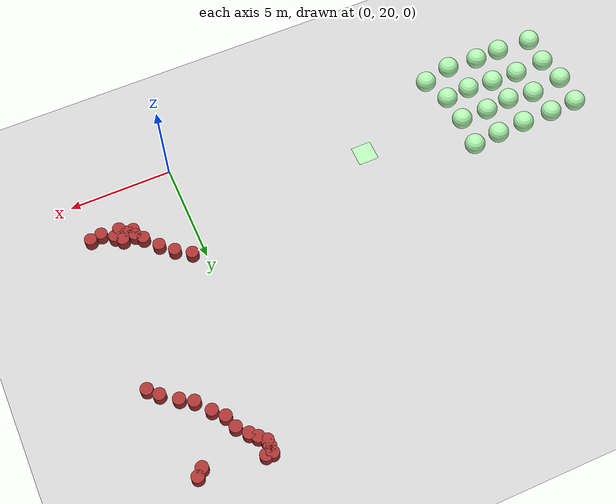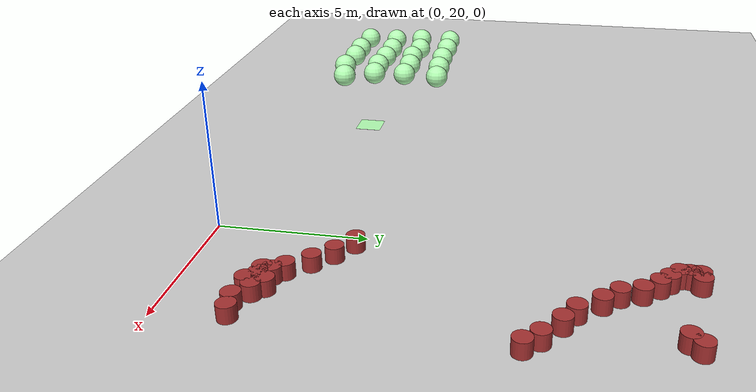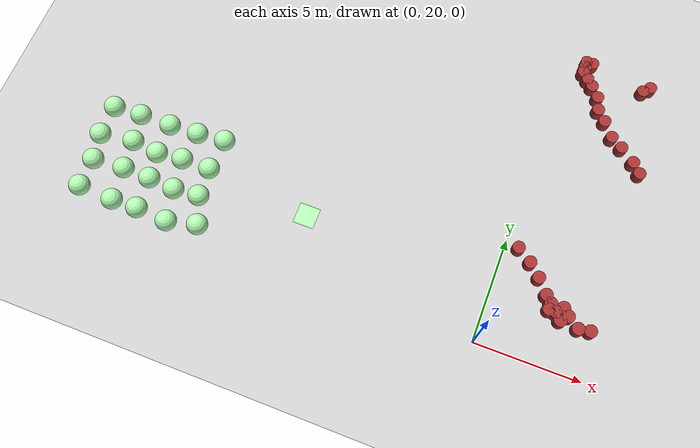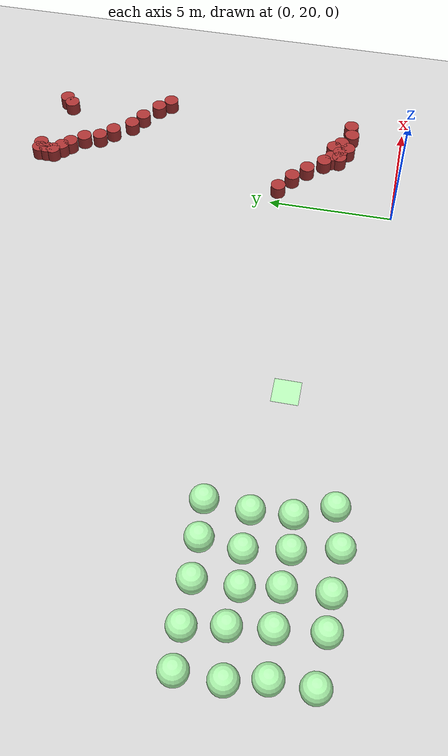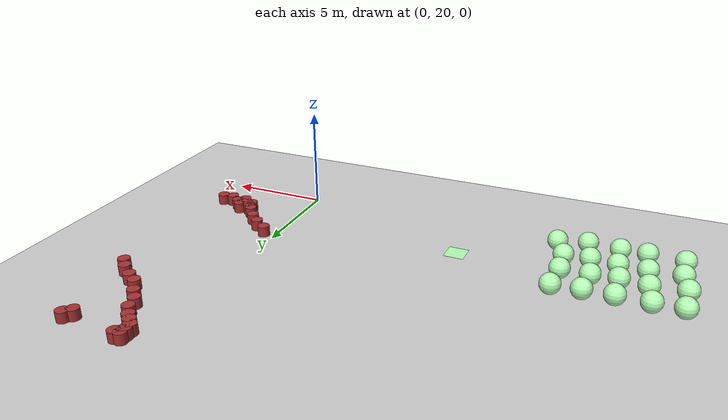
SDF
<sdf version="1.6">
 <world name="default">
  <model name="bouncy_ball">
   <link name="link_0">
    <inertial>
     <mass>0.1</mass>
     <inertia><ixx>1</ixx><ixy>0</ixy><ixz>0</ixz><iyy>1</iyy><iyz>0</iyz><izz>1</izz></inertia>
    </inertial>
    <visual name="visual">
     <geometry><sphere><radius>0.5</radius></sphere></geometry>
     <material>
      <lighting>1</lighting>
      <script><uri>file://media/materials/scripts/gazebo.material</uri><name>Gazebo/Grey</name></script>
      <shader type="pixel"><normal_map>__default__</normal_map></shader>
      <ambient>0 1 0 0</ambient>
      <diffuse>0.7 1 0.7 1</diffuse>
      <specular>0.01 0.01 0.01 1</specular>
      <emissive>0 0 0 1</emissive>
     </material>
    </visual>
    <collision name="collision">
     <geometry><sphere><radius>0.5</radius></sphere></geometry>
     <surface>
      <friction><ode><mu>0</mu><mu2>0</mu2></ode></friction>
      <contact>
       <ode><kp>500000</kp><kd>0</kd><max_vel>1e+26</max_vel><min_depth>0</min_depth></ode>
       <bullet>
        <kp>500000</kp>
        <kd>0</kd>
        <split_impulse>1</split_impulse>
        <split_impulse_penetration_threshold>-0.01</split_impulse_penetration_threshold>
       </bullet>
      </contact>
     </surface>
    </collision>
   </link>
   <static>0</static>
   <pose>-19.8053 24.5819 0.499998 0 -0 0</pose>
  </model>
  <model name="bouncy_ball_clone">
   <link name="link_0">
    <inertial>
     <mass>0.1</mass>
     <inertia><ixx>1</ixx><ixy>0</ixy><ixz>0</ixz><iyy>1</iyy><iyz>0</iyz><izz>1</izz></inertia>
    </inertial>
    <visual name="visual">
     <geometry><sphere><radius>0.5</radius></sphere></geometry>
     <material>
      <lighting>1</lighting>
      <script><uri>file://media/materials/scripts/gazebo.material</uri><name>Gazebo/Grey</name></script>
      <shader type="pixel"><normal_map>__default__</normal_map></shader>
      <ambient>0 1 0 0</ambient>
      <diffuse>0.7 1 0.7 1</diffuse>
      <specular>0.01 0.01 0.01 1</specular>
      <emissive>0 0 0 1</emissive>
     </material>
    </visual>
    <collision name="collision">
     <geometry><sphere><radius>0.5</radius></sphere></geometry>
     <surface>
      <friction><ode><mu>0</mu><mu2>0</mu2></ode></friction>
      <contact>
       <ode><kp>500000</kp><kd>0</kd><max_vel>1e+26</max_vel><min_depth>0</min_depth></ode>
       <bullet>
        <kp>500000</kp>
        <kd>0</kd>
        <split_impulse>1</split_impulse>
        <split_impulse_penetration_threshold>-0.01</split_impulse_penetration_threshold>
       </bullet>
      </contact>
     </surface>
    </collision>
   </link>
   <static>0</static>
   <pose>-18.4197 24.647 0.499998 0 -0 0</pose>
  </model>
  <model name="bouncy_ball_clone_0">
   <link name="link_0">
    <inertial>
     <mass>0.1</mass>
     <inertia><ixx>1</ixx><ixy>0</ixy><ixz>0</ixz><iyy>1</iyy><iyz>0</iyz><izz>1</izz></inertia>
    </inertial>
    <visual name="visual">
     <geometry><sphere><radius>0.5</radius></sphere></geometry>
     <material>
      <lighting>1</lighting>
      <script><uri>file://media/materials/scripts/gazebo.material</uri><name>Gazebo/Grey</name></script>
      <shader type="pixel"><normal_map>__default__</normal_map></shader>
      <ambient>0 1 0 0</ambient>
      <diffuse>0.7 1 0.7 1</diffuse>
      <specular>0.01 0.01 0.01 1</specular>
      <emissive>0 0 0 1</emissive>
     </material>
    </visual>
    <collision name="collision">
     <geometry><sphere><radius>0.5</radius></sphere></geometry>
     <surface>
      <friction><ode><mu>0</mu><mu2>0</mu2></ode></friction>
      <contact>
       <ode><kp>500000</kp><kd>0</kd><max_vel>1e+26</max_vel><min_depth>0</min_depth></ode>
       <bullet>
        <kp>500000</kp>
        <kd>0</kd>
        <split_impulse>1</split_impulse>
        <split_impulse_penetration_threshold>-0.01</split_impulse_penetration_threshold>
       </bullet>
      </contact>
     </surface>
    </collision>
   </link>
   <static>0</static>
   <pose>-16.8768 24.6481 0.499998 0 -0 0</pose>
  </model>
  <model name="bouncy_ball_clone_1">
   <link name="link_0">
    <inertial>
     <mass>0.1</mass>
     <inertia><ixx>1</ixx><ixy>0</ixy><ixz>0</ixz><iyy>1</iyy><iyz>0</iyz><izz>1</izz></inertia>
    </inertial>
    <visual name="visual">
     <geometry><sphere><radius>0.5</radius></sphere></geometry>
     <material>
      <lighting>1</lighting>
      <script><uri>file://media/materials/scripts/gazebo.material</uri><name>Gazebo/Grey</name></script>
      <shader type="pixel"><normal_map>__default__</normal_map></shader>
      <ambient>0 1 0 0</ambient>
      <diffuse>0.7 1 0.7 1</diffuse>
      <specular>0.01 0.01 0.01 1</specular>
      <emissive>0 0 0 1</emissive>
     </material>
    </visual>
    <collision name="collision">
     <geometry><sphere><radius>0.5</radius></sphere></geometry>
     <surface>
      <friction><ode><mu>0</mu><mu2>0</mu2></ode></friction>
      <contact>
       <ode><kp>500000</kp><kd>0</kd><max_vel>1e+26</max_vel><min_depth>0</min_depth></ode>
       <bullet>
        <kp>500000</kp>
        <kd>0</kd>
        <split_impulse>1</split_impulse>
        <split_impulse_penetration_threshold>-0.01</split_impulse_penetration_threshold>
       </bullet>
      </contact>
     </surface>
    </collision>
   </link>
   <static>0</static>
   <pose>-15.4597 24.7144 0.499998 0 -0 0</pose>
  </model>
  <model name="bouncy_ball_clone_2">
   <link name="link_0">
    <inertial>
     <mass>0.1</mass>
     <inertia><ixx>1</ixx><ixy>0</ixy><ixz>0</ixz><iyy>1</iyy><iyz>0</iyz><izz>1</izz></inertia>
    </inertial>
    <visual name="visual">
     <geometry><sphere><radius>0.5</radius></sphere></geometry>
     <material>
      <lighting>1</lighting>
      <script><uri>file://media/materials/scripts/gazebo.material</uri><name>Gazebo/Grey</name></script>
      <shader type="pixel"><normal_map>__default__</normal_map></shader>
      <ambient>0 1 0 0</ambient>
      <diffuse>0.7 1 0.7 1</diffuse>
      <specular>0.01 0.01 0.01 1</specular>
      <emissive>0 0 0 1</emissive>
     </material>
    </visual>
    <collision name="collision">
     <geometry><sphere><radius>0.5</radius></sphere></geometry>
     <surface>
      <friction><ode><mu>0</mu><mu2>0</mu2></ode></friction>
      <contact>
       <ode><kp>500000</kp><kd>0</kd><max_vel>1e+26</max_vel><min_depth>0</min_depth></ode>
       <bullet>
        <kp>500000</kp>
        <kd>0</kd>
        <split_impulse>1</split_impulse>
        <split_impulse_penetration_threshold>-0.01</split_impulse_penetration_threshold>
       </bullet>
      </contact>
     </surface>
    </collision>
   </link>
   <static>0</static>
   <pose>-14.0987 24.8301 0.499998 0 -0 0</pose>
  </model>
  <model name="bouncy_ball_clone_3">
   <link name="link_0">
    <inertial>
     <mass>0.1</mass>
     <inertia><ixx>1</ixx><ixy>0</ixy><ixz>0</ixz><iyy>1</iyy><iyz>0</iyz><izz>1</izz></inertia>
    </inertial>
    <visual name="visual">
     <geometry><sphere><radius>0.5</radius></sphere></geometry>
     <material>
      <lighting>1</lighting>
      <script><uri>file://media/materials/scripts/gazebo.material</uri><name>Gazebo/Grey</name></script>
      <shader type="pixel"><normal_map>__default__</normal_map></shader>
      <ambient>0 1 0 0</ambient>
      <diffuse>0.7 1 0.7 1</diffuse>
      <specular>0.01 0.01 0.01 1</specular>
      <emissive>0 0 0 1</emissive>
     </material>
    </visual>
    <collision name="collision">
     <geometry><sphere><radius>0.5</radius></sphere></geometry>
     <surface>
      <friction><ode><mu>0</mu><mu2>0</mu2></ode></friction>
      <contact>
       <ode><kp>500000</kp><kd>0</kd><max_vel>1e+26</max_vel><min_depth>0</min_depth></ode>
       <bullet>
        <kp>500000</kp>
        <kd>0</kd>
        <split_impulse>1</split_impulse>
        <split_impulse_penetration_threshold>-0.01</split_impulse_penetration_threshold>
       </bullet>
      </contact>
     </surface>
    </collision>
   </link>
   <static>0</static>
   <pose>-19.8031 23.0705 0.499998 0 -0 0</pose>
  </model>
  <model name="bouncy_ball_clone_4">
   <link name="link_0">
    <inertial>
     <mass>0.1</mass>
     <inertia><ixx>1</ixx><ixy>0</ixy><ixz>0</ixz><iyy>1</iyy><iyz>0</iyz><izz>1</izz></inertia>
    </inertial>
    <visual name="visual">
     <geometry><sphere><radius>0.5</radius></sphere></geometry>
     <material>
      <lighting>1</lighting>
      <script><uri>file://media/materials/scripts/gazebo.material</uri><name>Gazebo/Grey</name></script>
      <shader type="pixel"><normal_map>__default__</normal_map></shader>
      <ambient>0 1 0 0</ambient>
      <diffuse>0.7 1 0.7 1</diffuse>
      <specular>0.01 0.01 0.01 1</specular>
      <emissive>0 0 0 1</emissive>
     </material>
    </visual>
    <collision name="collision">
     <geometry><sphere><radius>0.5</radius></sphere></geometry>
     <surface>
      <friction><ode><mu>0</mu><mu2>0</mu2></ode></friction>
      <contact>
       <ode><kp>500000</kp><kd>0</kd><max_vel>1e+26</max_vel><min_depth>0</min_depth></ode>
       <bullet>
        <kp>500000</kp>
        <kd>0</kd>
        <split_impulse>1</split_impulse>
        <split_impulse_penetration_threshold>-0.01</split_impulse_penetration_threshold>
       </bullet>
      </contact>
     </surface>
    </collision>
   </link>
   <static>0</static>
   <pose>-18.1657 23.2921 0.499998 0 -0 0</pose>
  </model>
  <model name="bouncy_ball_clone_5">
   <link name="link_0">
    <inertial>
     <mass>0.1</mass>
     <inertia><ixx>1</ixx><ixy>0</ixy><ixz>0</ixz><iyy>1</iyy><iyz>0</iyz><izz>1</izz></inertia>
    </inertial>
    <visual name="visual">
     <geometry><sphere><radius>0.5</radius></sphere></geometry>
     <material>
      <lighting>1</lighting>
      <script><uri>file://media/materials/scripts/gazebo.material</uri><name>Gazebo/Grey</name></script>
      <shader type="pixel"><normal_map>__default__</normal_map></shader>
      <ambient>0 1 0 0</ambient>
      <diffuse>0.7 1 0.7 1</diffuse>
      <specular>0.01 0.01 0.01 1</specular>
      <emissive>0 0 0 1</emissive>
     </material>
    </visual>
    <collision name="collision">
     <geometry><sphere><radius>0.5</radius></sphere></geometry>
     <surface>
      <friction><ode><mu>0</mu><mu2>0</mu2></ode></friction>
      <contact>
       <ode><kp>500000</kp><kd>0</kd><max_vel>1e+26</max_vel><min_depth>0</min_depth></ode>
       <bullet>
        <kp>500000</kp>
        <kd>0</kd>
        <split_impulse>1</split_impulse>
        <split_impulse_penetration_threshold>-0.01</split_impulse_penetration_threshold>
       </bullet>
      </contact>
     </surface>
    </collision>
   </link>
   <static>0</static>
   <pose>-16.8429 23.1367 0.499998 0 -0 0</pose>
  </model>
  <model name="bouncy_ball_clone_6">
   <link name="link_0">
    <inertial>
     <mass>0.1</mass>
     <inertia><ixx>1</ixx><ixy>0</ixy><ixz>0</ixz><iyy>1</iyy><iyz>0</iyz><izz>1</izz></inertia>
    </inertial>
    <visual name="visual">
     <geometry><sphere><radius>0.5</radius></sphere></geometry>
     <material>
      <lighting>1</lighting>
      <script><uri>file://media/materials/scripts/gazebo.material</uri><name>Gazebo/Grey</name></script>
      <shader type="pixel"><normal_map>__default__</normal_map></shader>
      <ambient>0 1 0 0</ambient>
      <diffuse>0.7 1 0.7 1</diffuse>
      <specular>0.01 0.01 0.01 1</specular>
      <emissive>0 0 0 1</emissive>
     </material>
    </visual>
    <collision name="collision">
     <geometry><sphere><radius>0.5</radius></sphere></geometry>
     <surface>
      <friction><ode><mu>0</mu><mu2>0</mu2></ode></friction>
      <contact>
       <ode><kp>500000</kp><kd>0</kd><max_vel>1e+26</max_vel><min_depth>0</min_depth></ode>
       <bullet>
        <kp>500000</kp>
        <kd>0</kd>
        <split_impulse>1</split_impulse>
        <split_impulse_penetration_threshold>-0.01</split_impulse_penetration_threshold>
       </bullet>
      </contact>
     </surface>
    </collision>
   </link>
   <static>0</static>
   <pose>-15.5838 23.2647 0.499998 0 -0 0</pose>
  </model>
  <model name="bouncy_ball_clone_7">
   <link name="link_0">
    <inertial>
     <mass>0.1</mass>
     <inertia><ixx>1</ixx><ixy>0</ixy><ixz>0</ixz><iyy>1</iyy><iyz>0</iyz><izz>1</izz></inertia>
    </inertial>
    <visual name="visual">
     <geometry><sphere><radius>0.5</radius></sphere></geometry>
     <material>
      <lighting>1</lighting>
      <script><uri>file://media/materials/scripts/gazebo.material</uri><name>Gazebo/Grey</name></script>
      <shader type="pixel"><normal_map>__default__</normal_map></shader>
      <ambient>0 1 0 0</ambient>
      <diffuse>0.7 1 0.7 1</diffuse>
      <specular>0.01 0.01 0.01 1</specular>
      <emissive>0 0 0 1</emissive>
     </material>
    </visual>
    <collision name="collision">
     <geometry><sphere><radius>0.5</radius></sphere></geometry>
     <surface>
      <friction><ode><mu>0</mu><mu2>0</mu2></ode></friction>
      <contact>
       <ode><kp>500000</kp><kd>0</kd><max_vel>1e+26</max_vel><min_depth>0</min_depth></ode>
       <bullet>
        <kp>500000</kp>
        <kd>0</kd>
        <split_impulse>1</split_impulse>
        <split_impulse_penetration_threshold>-0.01</split_impulse_penetration_threshold>
       </bullet>
      </contact>
     </surface>
    </collision>
   </link>
   <static>0</static>
   <pose>-14.1979 23.267 0.499998 0 -0 0</pose>
  </model>
  <model name="bouncy_ball_clone_8">
   <link name="link_0">
    <inertial>
     <mass>0.1</mass>
     <inertia><ixx>1</ixx><ixy>0</ixy><ixz>0</ixz><iyy>1</iyy><iyz>0</iyz><izz>1</izz></inertia>
    </inertial>
    <visual name="visual">
     <geometry><sphere><radius>0.5</radius></sphere></geometry>
     <material>
      <lighting>1</lighting>
      <script><uri>file://media/materials/scripts/gazebo.material</uri><name>Gazebo/Grey</name></script>
      <shader type="pixel"><normal_map>__default__</normal_map></shader>
      <ambient>0 1 0 0</ambient>
      <diffuse>0.7 1 0.7 1</diffuse>
      <specular>0.01 0.01 0.01 1</specular>
      <emissive>0 0 0 1</emissive>
     </material>
    </visual>
    <collision name="collision">
     <geometry><sphere><radius>0.5</radius></sphere></geometry>
     <surface>
      <friction><ode><mu>0</mu><mu2>0</mu2></ode></friction>
      <contact>
       <ode><kp>500000</kp><kd>0</kd><max_vel>1e+26</max_vel><min_depth>0</min_depth></ode>
       <bullet>
        <kp>500000</kp>
        <kd>0</kd>
        <split_impulse>1</split_impulse>
        <split_impulse_penetration_threshold>-0.01</split_impulse_penetration_threshold>
       </bullet>
      </contact>
     </surface>
    </collision>
   </link>
   <static>0</static>
   <pose>-19.5178 21.7785 0.499998 0 -0 0</pose>
  </model>
  <model name="bouncy_ball_clone_9">
   <link name="link_0">
    <inertial>
     <mass>0.1</mass>
     <inertia><ixx>1</ixx><ixy>0</ixy><ixz>0</ixz><iyy>1</iyy><iyz>0</iyz><izz>1</izz></inertia>
    </inertial>
    <visual name="visual">
     <geometry><sphere><radius>0.5</radius></sphere></geometry>
     <material>
      <lighting>1</lighting>
      <script><uri>file://media/materials/scripts/gazebo.material</uri><name>Gazebo/Grey</name></script>
      <shader type="pixel"><normal_map>__default__</normal_map></shader>
      <ambient>0 1 0 0</ambient>
      <diffuse>0.7 1 0.7 1</diffuse>
      <specular>0.01 0.01 0.01 1</specular>
      <emissive>0 0 0 1</emissive>
     </material>
    </visual>
    <collision name="collision">
     <geometry><sphere><radius>0.5</radius></sphere></geometry>
     <surface>
      <friction><ode><mu>0</mu><mu2>0</mu2></ode></friction>
      <contact>
       <ode><kp>500000</kp><kd>0</kd><max_vel>1e+26</max_vel><min_depth>0</min_depth></ode>
       <bullet>
        <kp>500000</kp>
        <kd>0</kd>
        <split_impulse>1</split_impulse>
        <split_impulse_penetration_threshold>-0.01</split_impulse_penetration_threshold>
       </bullet>
      </contact>
     </surface>
    </collision>
   </link>
   <static>0</static>
   <pose>-17.975 21.8756 0.499998 0 -0 0</pose>
  </model>
  <model name="bouncy_ball_clone_10">
   <link name="link_0">
    <inertial>
     <mass>0.1</mass>
     <inertia><ixx>1</ixx><ixy>0</ixy><ixz>0</ixz><iyy>1</iyy><iyz>0</iyz><izz>1</izz></inertia>
    </inertial>
    <visual name="visual">
     <geometry><sphere><radius>0.5</radius></sphere></geometry>
     <material>
      <lighting>1</lighting>
      <script><uri>file://media/materials/scripts/gazebo.material</uri><name>Gazebo/Grey</name></script>
      <shader type="pixel"><normal_map>__default__</normal_map></shader>
      <ambient>0 1 0 0</ambient>
      <diffuse>0.7 1 0.7 1</diffuse>
      <specular>0.01 0.01 0.01 1</specular>
      <emissive>0 0 0 1</emissive>
     </material>
    </visual>
    <collision name="collision">
     <geometry><sphere><radius>0.5</radius></sphere></geometry>
     <surface>
      <friction><ode><mu>0</mu><mu2>0</mu2></ode></friction>
      <contact>
       <ode><kp>500000</kp><kd>0</kd><max_vel>1e+26</max_vel><min_depth>0</min_depth></ode>
       <bullet>
        <kp>500000</kp>
        <kd>0</kd>
        <split_impulse>1</split_impulse>
        <split_impulse_penetration_threshold>-0.01</split_impulse_penetration_threshold>
       </bullet>
      </contact>
     </surface>
    </collision>
   </link>
   <static>0</static>
   <pose>-16.6209 21.847 0.499998 0 -0 0</pose>
  </model>
  <model name="bouncy_ball_clone_11">
   <link name="link_0">
    <inertial>
     <mass>0.1</mass>
     <inertia><ixx>1</ixx><ixy>0</ixy><ixz>0</ixz><iyy>1</iyy><iyz>0</iyz><izz>1</izz></inertia>
    </inertial>
    <visual name="visual">
     <geometry><sphere><radius>0.5</radius></sphere></geometry>
     <material>
      <lighting>1</lighting>
      <script><uri>file://media/materials/scripts/gazebo.material</uri><name>Gazebo/Grey</name></script>
      <shader type="pixel"><normal_map>__default__</normal_map></shader>
      <ambient>0 1 0 0</ambient>
      <diffuse>0.7 1 0.7 1</diffuse>
      <specular>0.01 0.01 0.01 1</specular>
      <emissive>0 0 0 1</emissive>
     </material>
    </visual>
    <collision name="collision">
     <geometry><sphere><radius>0.5</radius></sphere></geometry>
     <surface>
      <friction><ode><mu>0</mu><mu2>0</mu2></ode></friction>
      <contact>
       <ode><kp>500000</kp><kd>0</kd><max_vel>1e+26</max_vel><min_depth>0</min_depth></ode>
       <bullet>
        <kp>500000</kp>
        <kd>0</kd>
        <split_impulse>1</split_impulse>
        <split_impulse_penetration_threshold>-0.01</split_impulse_penetration_threshold>
       </bullet>
      </contact>
     </surface>
    </collision>
   </link>
   <static>0</static>
   <pose>-15.3297 21.7545 0.499998 0 -0 0</pose>
  </model>
  <model name="bouncy_ball_clone_12">
   <link name="link_0">
    <inertial>
     <mass>0.1</mass>
     <inertia><ixx>1</ixx><ixy>0</ixy><ixz>0</ixz><iyy>1</iyy><iyz>0</iyz><izz>1</izz></inertia>
    </inertial>
    <visual name="visual">
     <geometry><sphere><radius>0.5</radius></sphere></geometry>
     <material>
      <lighting>1</lighting>
      <script><uri>file://media/materials/scripts/gazebo.material</uri><name>Gazebo/Grey</name></script>
      <shader type="pixel"><normal_map>__default__</normal_map></shader>
      <ambient>0 1 0 0</ambient>
      <diffuse>0.7 1 0.7 1</diffuse>
      <specular>0.01 0.01 0.01 1</specular>
      <emissive>0 0 0 1</emissive>
     </material>
    </visual>
    <collision name="collision">
     <geometry><sphere><radius>0.5</radius></sphere></geometry>
     <surface>
      <friction><ode><mu>0</mu><mu2>0</mu2></ode></friction>
      <contact>
       <ode><kp>500000</kp><kd>0</kd><max_vel>1e+26</max_vel><min_depth>0</min_depth></ode>
       <bullet>
        <kp>500000</kp>
        <kd>0</kd>
        <split_impulse>1</split_impulse>
        <split_impulse_penetration_threshold>-0.01</split_impulse_penetration_threshold>
       </bullet>
      </contact>
     </surface>
    </collision>
   </link>
   <static>0</static>
   <pose>-14.0954 21.8631 0.499998 0 -0 0</pose>
  </model>
  <model name="bouncy_ball_clone_13">
   <link name="link_0">
    <inertial>
     <mass>0.1</mass>
     <inertia><ixx>1</ixx><ixy>0</ixy><ixz>0</ixz><iyy>1</iyy><iyz>0</iyz><izz>1</izz></inertia>
    </inertial>
    <visual name="visual">
     <geometry><sphere><radius>0.5</radius></sphere></geometry>
     <material>
      <lighting>1</lighting>
      <script><uri>file://media/materials/scripts/gazebo.material</uri><name>Gazebo/Grey</name></script>
      <shader type="pixel"><normal_map>__default__</normal_map></shader>
      <ambient>0 1 0 0</ambient>
      <diffuse>0.7 1 0.7 1</diffuse>
      <specular>0.01 0.01 0.01 1</specular>
      <emissive>0 0 0 1</emissive>
     </material>
    </visual>
    <collision name="collision">
     <geometry><sphere><radius>0.5</radius></sphere></geometry>
     <surface>
      <friction><ode><mu>0</mu><mu2>0</mu2></ode></friction>
      <contact>
       <ode><kp>500000</kp><kd>0</kd><max_vel>1e+26</max_vel><min_depth>0</min_depth></ode>
       <bullet>
        <kp>500000</kp>
        <kd>0</kd>
        <split_impulse>1</split_impulse>
        <split_impulse_penetration_threshold>-0.01</split_impulse_penetration_threshold>
       </bullet>
      </contact>
     </surface>
    </collision>
   </link>
   <static>0</static>
   <pose>-19.5151 20.363 0.499998 0 -0 0</pose>
  </model>
  <model name="bouncy_ball_clone_14">
   <link name="link_0">
    <inertial>
     <mass>0.1</mass>
     <inertia><ixx>1</ixx><ixy>0</ixy><ixz>0</ixz><iyy>1</iyy><iyz>0</iyz><izz>1</izz></inertia>
    </inertial>
    <visual name="visual">
     <geometry><sphere><radius>0.5</radius></sphere></geometry>
     <material>
      <lighting>1</lighting>
      <script><uri>file://media/materials/scripts/gazebo.material</uri><name>Gazebo/Grey</name></script>
      <shader type="pixel"><normal_map>__default__</normal_map></shader>
      <ambient>0 1 0 0</ambient>
      <diffuse>0.7 1 0.7 1</diffuse>
      <specular>0.01 0.01 0.01 1</specular>
      <emissive>0 0 0 1</emissive>
     </material>
    </visual>
    <collision name="collision">
     <geometry><sphere><radius>0.5</radius></sphere></geometry>
     <surface>
      <friction><ode><mu>0</mu><mu2>0</mu2></ode></friction>
      <contact>
       <ode><kp>500000</kp><kd>0</kd><max_vel>1e+26</max_vel><min_depth>0</min_depth></ode>
       <bullet>
        <kp>500000</kp>
        <kd>0</kd>
        <split_impulse>1</split_impulse>
        <split_impulse_penetration_threshold>-0.01</split_impulse_penetration_threshold>
       </bullet>
      </contact>
     </surface>
    </collision>
   </link>
   <static>0</static>
   <pose>-17.7829 20.2705 0.499998 0 -0 0</pose>
  </model>
  <model name="bouncy_ball_clone_15">
   <link name="link_0">
    <inertial>
     <mass>0.1</mass>
     <inertia><ixx>1</ixx><ixy>0</ixy><ixz>0</ixz><iyy>1</iyy><iyz>0</iyz><izz>1</izz></inertia>
    </inertial>
    <visual name="visual">
     <geometry><sphere><radius>0.5</radius></sphere></geometry>
     <material>
      <lighting>1</lighting>
      <script><uri>file://media/materials/scripts/gazebo.material</uri><name>Gazebo/Grey</name></script>
      <shader type="pixel"><normal_map>__default__</normal_map></shader>
      <ambient>0 1 0 0</ambient>
      <diffuse>0.7 1 0.7 1</diffuse>
      <specular>0.01 0.01 0.01 1</specular>
      <emissive>0 0 0 1</emissive>
     </material>
    </visual>
    <collision name="collision">
     <geometry><sphere><radius>0.5</radius></sphere></geometry>
     <surface>
      <friction><ode><mu>0</mu><mu2>0</mu2></ode></friction>
      <contact>
       <ode><kp>500000</kp><kd>0</kd><max_vel>1e+26</max_vel><min_depth>0</min_depth></ode>
       <bullet>
        <kp>500000</kp>
        <kd>0</kd>
        <split_impulse>1</split_impulse>
        <split_impulse_penetration_threshold>-0.01</split_impulse_penetration_threshold>
       </bullet>
      </contact>
     </surface>
    </collision>
   </link>
   <static>0</static>
   <pose>-16.5233 20.3036 0.499998 0 -0 0</pose>
  </model>
  <model name="bouncy_ball_clone_16">
   <link name="link_0">
    <inertial>
     <mass>0.1</mass>
     <inertia><ixx>1</ixx><ixy>0</ixy><ixz>0</ixz><iyy>1</iyy><iyz>0</iyz><izz>1</izz></inertia>
    </inertial>
    <visual name="visual">
     <geometry><sphere><radius>0.5</radius></sphere></geometry>
     <material>
      <lighting>1</lighting>
      <script><uri>file://media/materials/scripts/gazebo.material</uri><name>Gazebo/Grey</name></script>
      <shader type="pixel"><normal_map>__default__</normal_map></shader>
      <ambient>0 1 0 0</ambient>
      <diffuse>0.7 1 0.7 1</diffuse>
      <specular>0.01 0.01 0.01 1</specular>
      <emissive>0 0 0 1</emissive>
     </material>
    </visual>
    <collision name="collision">
     <geometry><sphere><radius>0.5</radius></sphere></geometry>
     <surface>
      <friction><ode><mu>0</mu><mu2>0</mu2></ode></friction>
      <contact>
       <ode><kp>500000</kp><kd>0</kd><max_vel>1e+26</max_vel><min_depth>0</min_depth></ode>
       <bullet>
        <kp>500000</kp>
        <kd>0</kd>
        <split_impulse>1</split_impulse>
        <split_impulse_penetration_threshold>-0.01</split_impulse_penetration_threshold>
       </bullet>
      </contact>
     </surface>
    </collision>
   </link>
   <static>0</static>
   <pose>-14.9803 20.2111 0.499998 0 -0 0</pose>
  </model>
  <model name="bouncy_ball_clone_17">
   <link name="link_0">
    <inertial>
     <mass>0.1</mass>
     <inertia><ixx>1</ixx><ixy>0</ixy><ixz>0</ixz><iyy>1</iyy><iyz>0</iyz><izz>1</izz></inertia>
    </inertial>
    <visual name="visual">
     <geometry><sphere><radius>0.5</radius></sphere></geometry>
     <material>
      <lighting>1</lighting>
      <script><uri>file://media/materials/scripts/gazebo.material</uri><name>Gazebo/Grey</name></script>
      <shader type="pixel"><normal_map>__default__</normal_map></shader>
      <ambient>0 1 0 0</ambient>
      <diffuse>0.7 1 0.7 1</diffuse>
      <specular>0.01 0.01 0.01 1</specular>
      <emissive>0 0 0 1</emissive>
     </material>
    </visual>
    <collision name="collision">
     <geometry><sphere><radius>0.5</radius></sphere></geometry>
     <surface>
      <friction><ode><mu>0</mu><mu2>0</mu2></ode></friction>
      <contact>
       <ode><kp>500000</kp><kd>0</kd><max_vel>1e+26</max_vel><min_depth>0</min_depth></ode>
       <bullet>
        <kp>500000</kp>
        <kd>0</kd>
        <split_impulse>1</split_impulse>
        <split_impulse_penetration_threshold>-0.01</split_impulse_penetration_threshold>
       </bullet>
      </contact>
     </surface>
    </collision>
   </link>
   <static>0</static>
   <pose>-13.5565 20.5548 0.499998 0 -0 0</pose>
  </model>
  <model name="goal_box">
   <link name="link_0">
    <inertial>
     <mass>100</mass>
     <inertia><ixx>1</ixx><ixy>0</ixy><ixz>0</ixz><iyy>1</iyy><iyz>0</iyz><izz>1</izz></inertia>
    </inertial>
    <visual name="visual">
     <geometry><box><size>1 1 0.001</size></box></geometry>
     <material>
      <lighting>1</lighting>
      <script><uri>file://media/materials/scripts/gazebo.material</uri><name>Gazebo/Grey</name></script>
      <shader type="pixel"><normal_map>__default__</normal_map></shader>
      <ambient>1 0 0 0</ambient>
      <diffuse>0.7 1 0.7 1</diffuse>
      <specular>0.01 0.01 0.01 1</specular>
      <emissive>0 0 0 1</emissive>
     </material>
    </visual>
    <collision name="collision">
     <geometry><box><size>1 1 0.001</size></box></geometry>
     <surface>
      <friction><ode><mu>0</mu><mu2>0</mu2></ode></friction>
      <contact>
       <ode><kp>500000</kp><kd>1</kd><max_vel>1e+26</max_vel><min_depth>0</min_depth></ode>
       <bullet>
        <kp>500000</kp>
        <kd>0</kd>
        <split_impulse>1</split_impulse>
        <split_impulse_penetration_threshold>-0.01</split_impulse_penetration_threshold>
       </bullet>
      </contact>
     </surface>
    </collision>
   </link>
   <static>0</static>
   <pose>-9.10412 22.8676 1.5e-05 0 -0 0</pose>
  </model>
  <model name="ground_plane">
   <static>1</static>
   <link name="link">
    <collision name="collision">
     <geometry><plane><normal>0 0 1</normal><size>100 100</size></plane></geometry>
     <surface><friction><ode><mu>100</mu><mu2>50</mu2></ode></friction></surface>
    </collision>
    <visual name="visual">
     <cast_shadows>0</cast_shadows>
     <geometry><plane><normal>0 0 1</normal><size>100 100</size></plane></geometry>
     <material>
      <script><uri>file://media/materials/scripts/gazebo.material</uri><name>Gazebo/Grey</name></script>
     </material>
    </visual>
   </link>
  </model>
  <model name="unit_cylinder_1">
   <static>1</static>
   <pose>1.86264 23.7407 0 0 -0 0</pose>
   <link name="link">
    <inertial>
     <mass>1</mass>
     <inertia><ixx>0.145833</ixx><ixy>0</ixy><ixz>0</ixz><iyy>0.145833</iyy><iyz>0</iyz><izz>0.125</izz></inertia>
    </inertial>
    <collision name="collision">
     <geometry><cylinder><radius>0.3</radius><length>1</length></cylinder></geometry>
    </collision>
    <visual name="visual">
     <geometry><cylinder><radius>0.3</radius><length>1</length></cylinder></geometry>
     <material><ambient>0.648 0.192 0.192 1</ambient><diffuse>0.648 0.192 0.192 1</diffuse></material>
     <material>
      <script><name>Gazebo/Grey</name><uri>file://media/materials/scripts/gazebo.material</uri></script>
     </material>
    </visual>
   </link>
  </model>
  <model name="unit_cylinder_2">
   <static>1</static>
   <pose>1.28987 24.2833 0 0 -0 0</pose>
   <link name="link">
    <inertial>
     <mass>1</mass>
     <inertia><ixx>0.145833</ixx><ixy>0</ixy><ixz>0</ixz><iyy>0.145833</iyy><iyz>0</iyz><izz>0.125</izz></inertia>
    </inertial>
    <collision name="collision">
     <geometry><cylinder><radius>0.3</radius><length>1</length></cylinder></geometry>
    </collision>
    <visual name="visual">
     <geometry><cylinder><radius>0.3</radius><length>1</length></cylinder></geometry>
     <material><ambient>0.648 0.192 0.192 1</ambient><diffuse>0.648 0.192 0.192 1</diffuse></material>
     <material>
      <script><name>Gazebo/Grey</name><uri>file://media/materials/scripts/gazebo.material</uri></script>
     </material>
    </visual>
   </link>
  </model>
  <model name="unit_cylinder_3">
   <static>1</static>
   <pose>0.9 34.5 0 0 -0 0</pose>
   <link name="link">
    <inertial>
     <mass>1</mass>
     <inertia><ixx>0.145833</ixx><ixy>0</ixy><ixz>0</ixz><iyy>0.145833</iyy><iyz>0</iyz><izz>0.125</izz></inertia>
    </inertial>
    <collision name="collision">
     <geometry><cylinder><radius>0.3</radius><length>1</length></cylinder></geometry>
    </collision>
    <visual name="visual">
     <geometry><cylinder><radius>0.3</radius><length>1</length></cylinder></geometry>
     <material><ambient>0.648 0.192 0.192 1</ambient><diffuse>0.648 0.192 0.192 1</diffuse></material>
     <material>
      <script><name>Gazebo/Grey</name><uri>file://media/materials/scripts/gazebo.material</uri></script>
     </material>
    </visual>
   </link>
  </model>
  <model name="unit_cylinder_4">
   <static>1</static>
   <pose>0.9 34.8 0 0 -0 0</pose>
   <link name="link">
    <inertial>
     <mass>1</mass>
     <inertia><ixx>0.145833</ixx><ixy>0</ixy><ixz>0</ixz><iyy>0.145833</iyy><iyz>0</iyz><izz>0.125</izz></inertia>
    </inertial>
    <collision name="collision">
     <geometry><cylinder><radius>0.3</radius><length>1</length></cylinder></geometry>
    </collision>
    <visual name="visual">
     <geometry><cylinder><radius>0.3</radius><length>1</length></cylinder></geometry>
     <material><ambient>0.648 0.192 0.192 1</ambient><diffuse>0.648 0.192 0.192 1</diffuse></material>
     <material>
      <script><name>Gazebo/Grey</name><uri>file://media/materials/scripts/gazebo.material</uri></script>
     </material>
    </visual>
   </link>
  </model>
  <model name="unit_cylinder_5">
   <static>1</static>
   <pose>0.9 35.1 0 0 -0 0</pose>
   <link name="link">
    <inertial>
     <mass>1</mass>
     <inertia><ixx>0.145833</ixx><ixy>0</ixy><ixz>0</ixz><iyy>0.145833</iyy><iyz>0</iyz><izz>0.125</izz></inertia>
    </inertial>
    <collision name="collision">
     <geometry><cylinder><radius>0.3</radius><length>1</length></cylinder></geometry>
    </collision>
    <visual name="visual">
     <geometry><cylinder><radius>0.3</radius><length>1</length></cylinder></geometry>
     <material><ambient>0.648 0.192 0.192 1</ambient><diffuse>0.648 0.192 0.192 1</diffuse></material>
     <material>
      <script><name>Gazebo/Grey</name><uri>file://media/materials/scripts/gazebo.material</uri></script>
     </material>
    </visual>
   </link>
  </model>
  <model name="unit_cylinder_6">
   <static>1</static>
   <pose>1.2 34.2 0 0 -0 0</pose>
   <link name="link">
    <inertial>
     <mass>1</mass>
     <inertia><ixx>0.145833</ixx><ixy>0</ixy><ixz>0</ixz><iyy>0.145833</iyy><iyz>0</iyz><izz>0.125</izz></inertia>
    </inertial>
    <collision name="collision">
     <geometry><cylinder><radius>0.3</radius><length>1</length></cylinder></geometry>
    </collision>
    <visual name="visual">
     <geometry><cylinder><radius>0.3</radius><length>1</length></cylinder></geometry>
     <material><ambient>0.648 0.192 0.192 1</ambient><diffuse>0.648 0.192 0.192 1</diffuse></material>
     <material>
      <script><name>Gazebo/Grey</name><uri>file://media/materials/scripts/gazebo.material</uri></script>
     </material>
    </visual>
   </link>
  </model>
  <model name="unit_cylinder_7">
   <static>1</static>
   <pose>1.2 35.1 0 0 -0 0</pose>
   <link name="link">
    <inertial>
     <mass>1</mass>
     <inertia><ixx>0.145833</ixx><ixy>0</ixy><ixz>0</ixz><iyy>0.145833</iyy><iyz>0</iyz><izz>0.125</izz></inertia>
    </inertial>
    <collision name="collision">
     <geometry><cylinder><radius>0.3</radius><length>1</length></cylinder></geometry>
    </collision>
    <visual name="visual">
     <geometry><cylinder><radius>0.3</radius><length>1</length></cylinder></geometry>
     <material><ambient>0.648 0.192 0.192 1</ambient><diffuse>0.648 0.192 0.192 1</diffuse></material>
     <material>
      <script><name>Gazebo/Grey</name><uri>file://media/materials/scripts/gazebo.material</uri></script>
     </material>
    </visual>
   </link>
  </model>
  <model name="unit_cylinder_11">
   <static>1</static>
   <pose>0.595674 24.7613 0 0 -0 0</pose>
   <link name="link">
    <inertial>
     <mass>1</mass>
     <inertia><ixx>0.145833</ixx><ixy>0</ixy><ixz>0</ixz><iyy>0.145833</iyy><iyz>0</iyz><izz>0.125</izz></inertia>
    </inertial>
    <collision name="collision">
     <geometry><cylinder><radius>0.3</radius><length>1</length></cylinder></geometry>
    </collision>
    <visual name="visual">
     <geometry><cylinder><radius>0.3</radius><length>1</length></cylinder></geometry>
     <material><ambient>0.648 0.192 0.192 1</ambient><diffuse>0.648 0.192 0.192 1</diffuse></material>
     <material>
      <script><name>Gazebo/Grey</name><uri>file://media/materials/scripts/gazebo.material</uri></script>
     </material>
    </visual>
   </link>
  </model>
  <model name="unit_cylinder_13">
   <static>1</static>
   <pose>1.5 33.9 0 0 -0 0</pose>
   <link name="link">
    <inertial>
     <mass>1</mass>
     <inertia><ixx>0.145833</ixx><ixy>0</ixy><ixz>0</ixz><iyy>0.145833</iyy><iyz>0</iyz><izz>0.125</izz></inertia>
    </inertial>
    <collision name="collision">
     <geometry><cylinder><radius>0.3</radius><length>1</length></cylinder></geometry>
    </collision>
    <visual name="visual">
     <geometry><cylinder><radius>0.3</radius><length>1</length></cylinder></geometry>
     <material><ambient>0.648 0.192 0.192 1</ambient><diffuse>0.648 0.192 0.192 1</diffuse></material>
     <material>
      <script><name>Gazebo/Grey</name><uri>file://media/materials/scripts/gazebo.material</uri></script>
     </material>
    </visual>
   </link>
  </model>
  <model name="unit_cylinder_18">
   <static>1</static>
   <pose>2.12949 32.7692 0 0 -0 0</pose>
   <link name="link">
    <inertial>
     <mass>1</mass>
     <inertia><ixx>0.145833</ixx><ixy>0</ixy><ixz>0</ixz><iyy>0.145833</iyy><iyz>0</iyz><izz>0.125</izz></inertia>
    </inertial>
    <collision name="collision">
     <geometry><cylinder><radius>0.3</radius><length>1</length></cylinder></geometry>
    </collision>
    <visual name="visual">
     <geometry><cylinder><radius>0.3</radius><length>1</length></cylinder></geometry>
     <material><ambient>0.648 0.192 0.192 1</ambient><diffuse>0.648 0.192 0.192 1</diffuse></material>
     <material>
      <script><name>Gazebo/Grey</name><uri>file://media/materials/scripts/gazebo.material</uri></script>
     </material>
    </visual>
   </link>
  </model>
  <model name="unit_cylinder_20">
   <static>1</static>
   <pose>4.69094 22.2107 0 0 -0 0</pose>
   <link name="link">
    <inertial>
     <mass>1</mass>
     <inertia><ixx>0.145833</ixx><ixy>0</ixy><ixz>0</ixz><iyy>0.145833</iyy><iyz>0</iyz><izz>0.125</izz></inertia>
    </inertial>
    <collision name="collision">
     <geometry><cylinder><radius>0.3</radius><length>1</length></cylinder></geometry>
    </collision>
    <visual name="visual">
     <geometry><cylinder><radius>0.3</radius><length>1</length></cylinder></geometry>
     <material><ambient>0.648 0.192 0.192 1</ambient><diffuse>0.648 0.192 0.192 1</diffuse></material>
     <material>
      <script><name>Gazebo/Grey</name><uri>file://media/materials/scripts/gazebo.material</uri></script>
     </material>
    </visual>
   </link>
  </model>
  <model name="unit_cylinder_21">
   <static>1</static>
   <pose>2.4 23.1 0 0 -0 0</pose>
   <link name="link">
    <inertial>
     <mass>1</mass>
     <inertia><ixx>0.145833</ixx><ixy>0</ixy><ixz>0</ixz><iyy>0.145833</iyy><iyz>0</iyz><izz>0.125</izz></inertia>
    </inertial>
    <collision name="collision">
     <geometry><cylinder><radius>0.3</radius><length>1</length></cylinder></geometry>
    </collision>
    <visual name="visual">
     <geometry><cylinder><radius>0.3</radius><length>1</length></cylinder></geometry>
     <material><ambient>0.648 0.192 0.192 1</ambient><diffuse>0.648 0.192 0.192 1</diffuse></material>
     <material>
      <script><name>Gazebo/Grey</name><uri>file://media/materials/scripts/gazebo.material</uri></script>
     </material>
    </visual>
   </link>
  </model>
  <model name="unit_cylinder_22">
   <static>1</static>
   <pose>3.69538 31.2301 0 0 -0 0</pose>
   <link name="link">
    <inertial>
     <mass>1</mass>
     <inertia><ixx>0.145833</ixx><ixy>0</ixy><ixz>0</ixz><iyy>0.145833</iyy><iyz>0</iyz><izz>0.125</izz></inertia>
    </inertial>
    <collision name="collision">
     <geometry><cylinder><radius>0.3</radius><length>1</length></cylinder></geometry>
    </collision>
    <visual name="visual">
     <geometry><cylinder><radius>0.3</radius><length>1</length></cylinder></geometry>
     <material><ambient>0.648 0.192 0.192 1</ambient><diffuse>0.648 0.192 0.192 1</diffuse></material>
     <material>
      <script><name>Gazebo/Grey</name><uri>file://media/materials/scripts/gazebo.material</uri></script>
     </material>
    </visual>
   </link>
  </model>
  <model name="unit_cylinder_23">
   <static>1</static>
   <pose>1.91894 33.4016 0 0 -0 0</pose>
   <link name="link">
    <inertial>
     <mass>1</mass>
     <inertia><ixx>0.145833</ixx><ixy>0</ixy><ixz>0</ixz><iyy>0.145833</iyy><iyz>0</iyz><izz>0.125</izz></inertia>
    </inertial>
    <collision name="collision">
     <geometry><cylinder><radius>0.3</radius><length>1</length></cylinder></geometry>
    </collision>
    <visual name="visual">
     <geometry><cylinder><radius>0.3</radius><length>1</length></cylinder></geometry>
     <material><ambient>0.648 0.192 0.192 1</ambient><diffuse>0.648 0.192 0.192 1</diffuse></material>
     <material>
      <script><name>Gazebo/Grey</name><uri>file://media/materials/scripts/gazebo.material</uri></script>
     </material>
    </visual>
   </link>
  </model>
  <model name="unit_cylinder_26">
   <static>1</static>
   <pose>4.14824 22.1227 0 0 -0 0</pose>
   <link name="link">
    <inertial>
     <mass>1</mass>
     <inertia><ixx>0.145833</ixx><ixy>0</ixy><ixz>0</ixz><iyy>0.145833</iyy><iyz>0</iyz><izz>0.125</izz></inertia>
    </inertial>
    <collision name="collision">
     <geometry><cylinder><radius>0.3</radius><length>1</length></cylinder></geometry>
    </collision>
    <visual name="visual">
     <geometry><cylinder><radius>0.3</radius><length>1</length></cylinder></geometry>
     <material><ambient>0.648 0.192 0.192 1</ambient><diffuse>0.648 0.192 0.192 1</diffuse></material>
     <material>
      <script><name>Gazebo/Grey</name><uri>file://media/materials/scripts/gazebo.material</uri></script>
     </material>
    </visual>
   </link>
  </model>
  <model name="unit_cylinder_28">
   <static>1</static>
   <pose>2.7 22.5 0 0 -0 0</pose>
   <link name="link">
    <inertial>
     <mass>1</mass>
     <inertia><ixx>0.145833</ixx><ixy>0</ixy><ixz>0</ixz><iyy>0.145833</iyy><iyz>0</iyz><izz>0.125</izz></inertia>
    </inertial>
    <collision name="collision">
     <geometry><cylinder><radius>0.3</radius><length>1</length></cylinder></geometry>
    </collision>
    <visual name="visual">
     <geometry><cylinder><radius>0.3</radius><length>1</length></cylinder></geometry>
     <material><ambient>0.648 0.192 0.192 1</ambient><diffuse>0.648 0.192 0.192 1</diffuse></material>
     <material>
      <script><name>Gazebo/Grey</name><uri>file://media/materials/scripts/gazebo.material</uri></script>
     </material>
    </visual>
   </link>
  </model>
  <model name="unit_cylinder_29">
   <static>1</static>
   <pose>2.7 22.8 0 0 -0 0</pose>
   <link name="link">
    <inertial>
     <mass>1</mass>
     <inertia><ixx>0.145833</ixx><ixy>0</ixy><ixz>0</ixz><iyy>0.145833</iyy><iyz>0</iyz><izz>0.125</izz></inertia>
    </inertial>
    <collision name="collision">
     <geometry><cylinder><radius>0.3</radius><length>1</length></cylinder></geometry>
    </collision>
    <visual name="visual">
     <geometry><cylinder><radius>0.3</radius><length>1</length></cylinder></geometry>
     <material><ambient>0.648 0.192 0.192 1</ambient><diffuse>0.648 0.192 0.192 1</diffuse></material>
     <material>
      <script><name>Gazebo/Grey</name><uri>file://media/materials/scripts/gazebo.material</uri></script>
     </material>
    </visual>
   </link>
  </model>
  <model name="unit_cylinder_30">
   <static>1</static>
   <pose>2.58085 32.2833 0 0 -0 0</pose>
   <link name="link">
    <inertial>
     <mass>1</mass>
     <inertia><ixx>0.145833</ixx><ixy>0</ixy><ixz>0</ixz><iyy>0.145833</iyy><iyz>0</iyz><izz>0.125</izz></inertia>
    </inertial>
    <collision name="collision">
     <geometry><cylinder><radius>0.3</radius><length>1</length></cylinder></geometry>
    </collision>
    <visual name="visual">
     <geometry><cylinder><radius>0.3</radius><length>1</length></cylinder></geometry>
     <material><ambient>0.648 0.192 0.192 1</ambient><diffuse>0.648 0.192 0.192 1</diffuse></material>
     <material>
      <script><name>Gazebo/Grey</name><uri>file://media/materials/scripts/gazebo.material</uri></script>
     </material>
    </visual>
   </link>
  </model>
  <model name="unit_cylinder_33">
   <static>1</static>
   <pose>3 22.5 0 0 -0 0</pose>
   <link name="link">
    <inertial>
     <mass>1</mass>
     <inertia><ixx>0.145833</ixx><ixy>0</ixy><ixz>0</ixz><iyy>0.145833</iyy><iyz>0</iyz><izz>0.125</izz></inertia>
    </inertial>
    <collision name="collision">
     <geometry><cylinder><radius>0.3</radius><length>1</length></cylinder></geometry>
    </collision>
    <visual name="visual">
     <geometry><cylinder><radius>0.3</radius><length>1</length></cylinder></geometry>
     <material><ambient>0.648 0.192 0.192 1</ambient><diffuse>0.648 0.192 0.192 1</diffuse></material>
     <material>
      <script><name>Gazebo/Grey</name><uri>file://media/materials/scripts/gazebo.material</uri></script>
     </material>
    </visual>
   </link>
  </model>
  <model name="unit_cylinder_34">
   <static>1</static>
   <pose>3.12134 31.5896 0 0 -0 0</pose>
   <link name="link">
    <inertial>
     <mass>1</mass>
     <inertia><ixx>0.145833</ixx><ixy>0</ixy><ixz>0</ixz><iyy>0.145833</iyy><iyz>0</iyz><izz>0.125</izz></inertia>
    </inertial>
    <collision name="collision">
     <geometry><cylinder><radius>0.3</radius><length>1</length></cylinder></geometry>
    </collision>
    <visual name="visual">
     <geometry><cylinder><radius>0.3</radius><length>1</length></cylinder></geometry>
     <material><ambient>0.648 0.192 0.192 1</ambient><diffuse>0.648 0.192 0.192 1</diffuse></material>
     <material>
      <script><name>Gazebo/Grey</name><uri>file://media/materials/scripts/gazebo.material</uri></script>
     </material>
    </visual>
   </link>
  </model>
  <model name="unit_cylinder_37">
   <static>1</static>
   <pose>3.3 22.2 0 0 -0 0</pose>
   <link name="link">
    <inertial>
     <mass>1</mass>
     <inertia><ixx>0.145833</ixx><ixy>0</ixy><ixz>0</ixz><iyy>0.145833</iyy><iyz>0</iyz><izz>0.125</izz></inertia>
    </inertial>
    <collision name="collision">
     <geometry><cylinder><radius>0.3</radius><length>1</length></cylinder></geometry>
    </collision>
    <visual name="visual">
     <geometry><cylinder><radius>0.3</radius><length>1</length></cylinder></geometry>
     <material><ambient>0.648 0.192 0.192 1</ambient><diffuse>0.648 0.192 0.192 1</diffuse></material>
     <material>
      <script><name>Gazebo/Grey</name><uri>file://media/materials/scripts/gazebo.material</uri></script>
     </material>
    </visual>
   </link>
  </model>
  <model name="unit_cylinder_38">
   <static>1</static>
   <pose>3.3 22.8 0 0 -0 0</pose>
   <link name="link">
    <inertial>
     <mass>1</mass>
     <inertia><ixx>0.145833</ixx><ixy>0</ixy><ixz>0</ixz><iyy>0.145833</iyy><iyz>0</iyz><izz>0.125</izz></inertia>
    </inertial>
    <collision name="collision">
     <geometry><cylinder><radius>0.3</radius><length>1</length></cylinder></geometry>
    </collision>
    <visual name="visual">
     <geometry><cylinder><radius>0.3</radius><length>1</length></cylinder></geometry>
     <material><ambient>0.648 0.192 0.192 1</ambient><diffuse>0.648 0.192 0.192 1</diffuse></material>
     <material>
      <script><name>Gazebo/Grey</name><uri>file://media/materials/scripts/gazebo.material</uri></script>
     </material>
    </visual>
   </link>
  </model>
  <model name="unit_cylinder_43">
   <static>1</static>
   <pose>3.6 22.5 0 0 -0 0</pose>
   <link name="link">
    <inertial>
     <mass>1</mass>
     <inertia><ixx>0.145833</ixx><ixy>0</ixy><ixz>0</ixz><iyy>0.145833</iyy><iyz>0</iyz><izz>0.125</izz></inertia>
    </inertial>
    <collision name="collision">
     <geometry><cylinder><radius>0.3</radius><length>1</length></cylinder></geometry>
    </collision>
    <visual name="visual">
     <geometry><cylinder><radius>0.3</radius><length>1</length></cylinder></geometry>
     <material><ambient>0.648 0.192 0.192 1</ambient><diffuse>0.648 0.192 0.192 1</diffuse></material>
     <material>
      <script><name>Gazebo/Grey</name><uri>file://media/materials/scripts/gazebo.material</uri></script>
     </material>
    </visual>
   </link>
  </model>
  <model name="unit_cylinder_47">
   <static>1</static>
   <pose>3.9 34.5 0 0 -0 0</pose>
   <link name="link">
    <inertial>
     <mass>1</mass>
     <inertia><ixx>0.145833</ixx><ixy>0</ixy><ixz>0</ixz><iyy>0.145833</iyy><iyz>0</iyz><izz>0.125</izz></inertia>
    </inertial>
    <collision name="collision">
     <geometry><cylinder><radius>0.3</radius><length>1</length></cylinder></geometry>
    </collision>
    <visual name="visual">
     <geometry><cylinder><radius>0.3</radius><length>1</length></cylinder></geometry>
     <material><ambient>0.648 0.192 0.192 1</ambient><diffuse>0.648 0.192 0.192 1</diffuse></material>
     <material>
      <script><name>Gazebo/Grey</name><uri>file://media/materials/scripts/gazebo.material</uri></script>
     </material>
    </visual>
   </link>
  </model>
  <model name="unit_cylinder_48">
   <static>1</static>
   <pose>4.2 34.8 0 0 -0 0</pose>
   <link name="link">
    <inertial>
     <mass>1</mass>
     <inertia><ixx>0.145833</ixx><ixy>0</ixy><ixz>0</ixz><iyy>0.145833</iyy><iyz>0</iyz><izz>0.125</izz></inertia>
    </inertial>
    <collision name="collision">
     <geometry><cylinder><radius>0.3</radius><length>1</length></cylinder></geometry>
    </collision>
    <visual name="visual">
     <geometry><cylinder><radius>0.3</radius><length>1</length></cylinder></geometry>
     <material><ambient>0.648 0.192 0.192 1</ambient><diffuse>0.648 0.192 0.192 1</diffuse></material>
     <material>
      <script><name>Gazebo/Grey</name><uri>file://media/materials/scripts/gazebo.material</uri></script>
     </material>
    </visual>
   </link>
  </model>
  <model name="unit_cylinder_49">
   <static>1</static>
   <pose>4.82967 30.2363 0 0 -0 0</pose>
   <link name="link">
    <inertial>
     <mass>1</mass>
     <inertia><ixx>0.145833</ixx><ixy>0</ixy><ixz>0</ixz><iyy>0.145833</iyy><iyz>0</iyz><izz>0.125</izz></inertia>
    </inertial>
    <collision name="collision">
     <geometry><cylinder><radius>0.3</radius><length>1</length></cylinder></geometry>
    </collision>
    <visual name="visual">
     <geometry><cylinder><radius>0.3</radius><length>1</length></cylinder></geometry>
     <material><ambient>0.648 0.192 0.192 1</ambient><diffuse>0.648 0.192 0.192 1</diffuse></material>
     <material>
      <script><name>Gazebo/Grey</name><uri>file://media/materials/scripts/gazebo.material</uri></script>
     </material>
    </visual>
   </link>
  </model>
  <model name="unit_cylinder_53">
   <static>1</static>
   <pose>4.40756 30.6867 0 0 -0 0</pose>
   <link name="link">
    <inertial>
     <mass>1</mass>
     <inertia><ixx>0.145833</ixx><ixy>0</ixy><ixz>0</ixz><iyy>0.145833</iyy><iyz>0</iyz><izz>0.125</izz></inertia>
    </inertial>
    <collision name="collision">
     <geometry><cylinder><radius>0.3</radius><length>1</length></cylinder></geometry>
    </collision>
    <visual name="visual">
     <geometry><cylinder><radius>0.3</radius><length>1</length></cylinder></geometry>
     <material><ambient>0.648 0.192 0.192 1</ambient><diffuse>0.648 0.192 0.192 1</diffuse></material>
     <material>
      <script><name>Gazebo/Grey</name><uri>file://media/materials/scripts/gazebo.material</uri></script>
     </material>
    </visual>
   </link>
  </model>
 </world>
</sdf>
